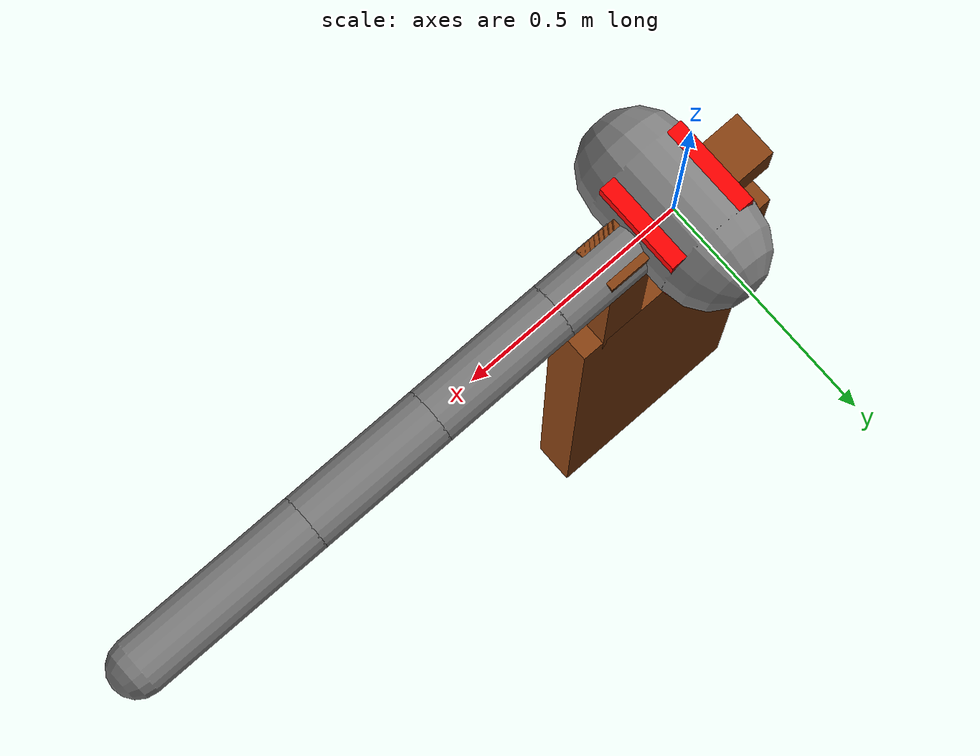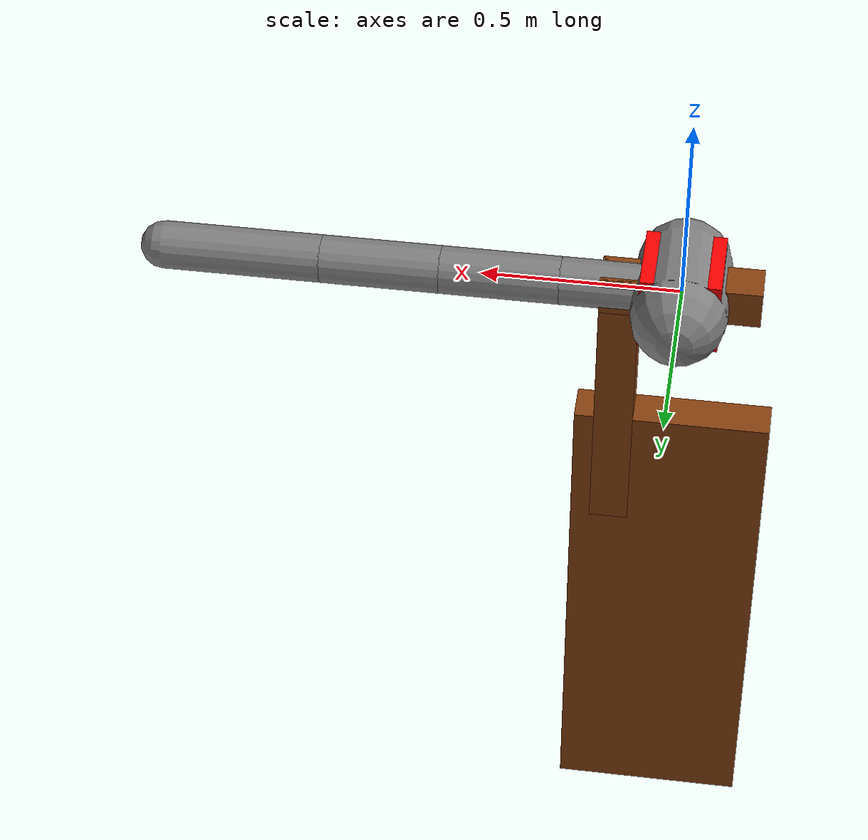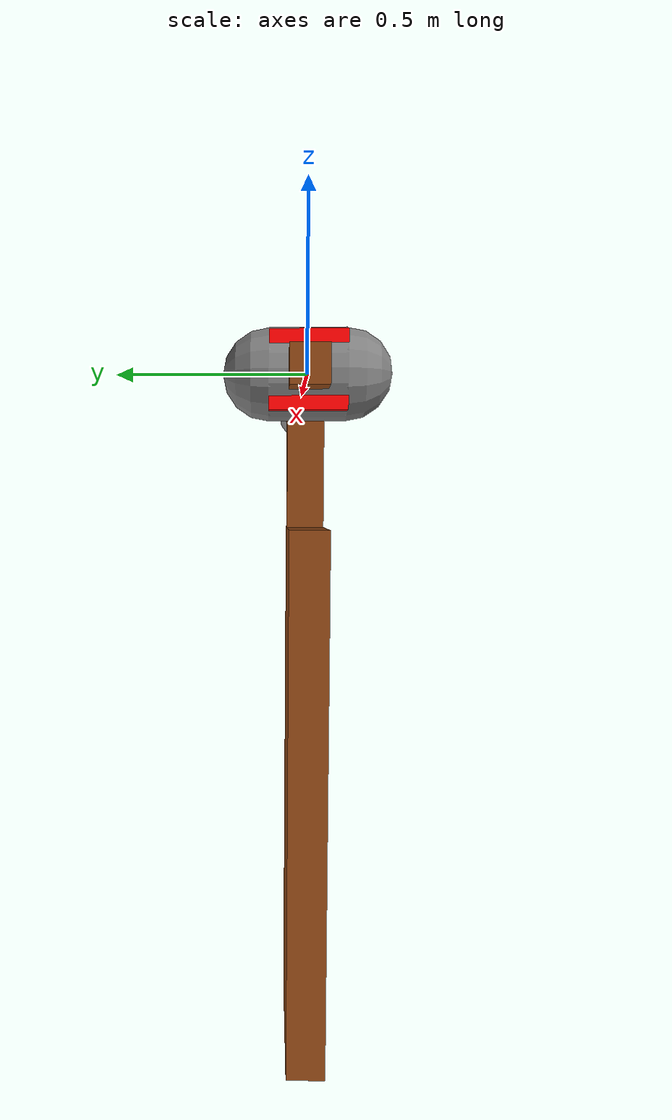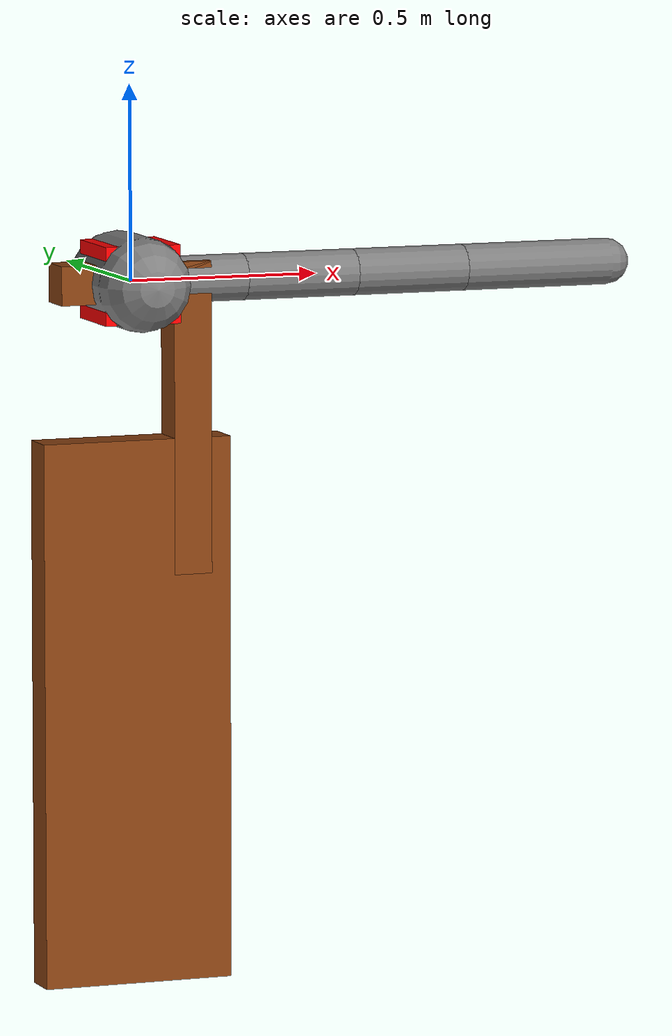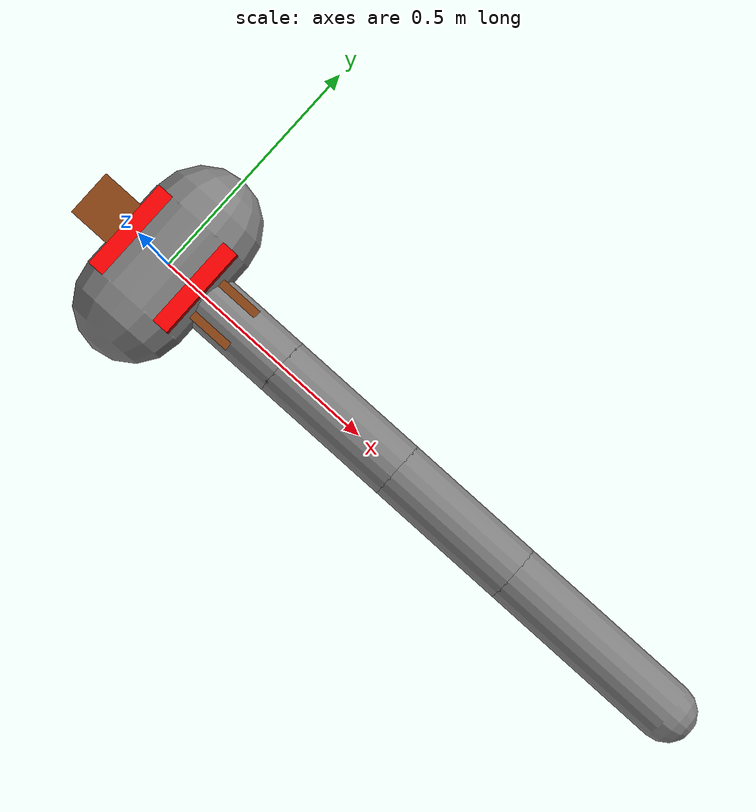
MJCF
<mujoco model="arm3d">
    <compiler inertiafromgeom="true" angle="radian" coordinate="local" />
    <option timestep="0.01" gravity="0 0 0" iterations="20" integrator="Euler" />

    <default>
        <joint armature='0.04' damping="1" limited="true"/>
        <geom friction=".8 .1 .1" density="300" margin="0.002" condim="1" contype="1" conaffinity="1"/>
    </default>

    <worldbody>
        <body name="palm" pos="0 0 0">
            <geom type="capsule" fromto="0 -0.1 0 0 0.1 0" size="0.12"/>

            <body name="proximal_1" pos="0 0 0">
                <joint name="proximal_j_1" type="hinge" pos="0 0 0" axis="0 1 0" range="-2.5236 2.3963" damping="1.0" />
                <geom type="capsule"  fromto="0 0 0 0.3 0 0" size="0.06" contype="1" conaffinity="1"/>
                <body name="distal_1" pos="0.3 0 0">
                    <joint name="distal_j_1" type="hinge" pos="0 0 0" axis="0 1 0" range="-2.3213 2.3" damping="1.0"/>
                    <geom type="capsule"  fromto="0 0 0 0.3 0 0" size="0.06" contype="1" conaffinity="1"/>
                    <body name="distal_2" pos="0.3 0 0">
                        <joint name="distal_j_2" type="hinge" pos="0 0 0" axis="0 1 0" range="-2.3213 2.3" damping="1.0"/>
                        <geom type="capsule" fromto="0 0 0 0.3 0 0" size="0.06" contype="1" conaffinity="1"/>
                        <body name="distal_3" pos="0.3 0 0">
                            <joint name="distal_j_3" type="hinge" pos="0 0 0" axis="0 1 0" range="-2.3213 2.3" damping="1.0"/>
                            <geom type="capsule" fromto="0 0 0 0.4 0 0" size="0.06" contype="1" conaffinity="1"/>
                            <body name="distal_4" pos="0.3 0 0">
                                <site name="tip arm" pos="0 0 0" size="0.01" />
                            </body>
                        </body>
                    </body>
                </body>
            </body>
        </body>
        <body name="object" pos="0.0 0.0 0.0">
            <geom rgba="0.54 0.26 0.07 1" type="box" size="0.2 0.05 0.05" density='10' contype="1" conaffinity="1"/>
            <geom rgba="0.54 0.26 0.07 1" type="box" pos="0.15 0 -0.35" size="0.05 0.05 0.4" density='0.01' contype="1" conaffinity="1"/>
            <geom rgba="0.54 0.26 0.07 1" type="box" pos="0 0 -1.1" size="0.25 0.05 0.7" density='0.01' contype="1" conaffinity="1"/>
            <joint name="obj_slidez" type="slide" pos="0.1 0.025 0.025" axis="0 0 1" range="-0.6 0.6" damping="0.5"/>
            <body name="distal_10" pos="0 0 0">
                <site name="obj_pos" pos="0.1 0.025 0.025" size="0.01" />
            </body>
        </body>

        <body name="goal" pos="0 0 0">
            <geom rgba="1. 0. 0. 1" type="box" size="0.1 0.1 0.1" density='0.00001' contype="0" conaffinity="0"/>
            <body name="distal_11" pos="0 0 0">
                <site name="goal_pos" pos="0.05 0.05 0.05" size="0.01" />
            </body>
        </body>
    </worldbody>

    <actuator>
        <motor joint="proximal_j_1" ctrlrange="-2 2" ctrllimited="true"/>
        <motor joint="distal_j_1" ctrlrange="-2 2" ctrllimited="true"/>
        <motor joint="distal_j_2" ctrlrange="-2 2" ctrllimited="true"/>
        <motor joint="distal_j_3" ctrlrange="-2 2" ctrllimited="true"/>
    </actuator>
</mujoco>
